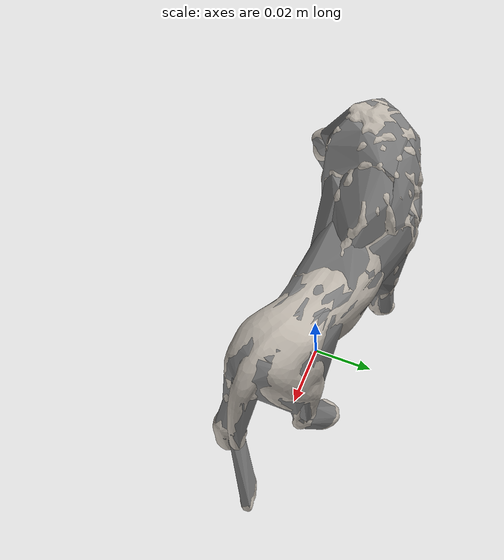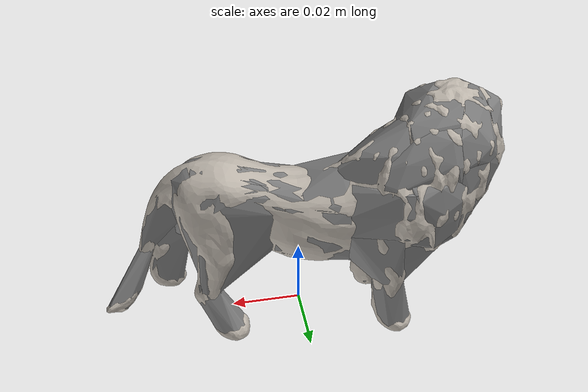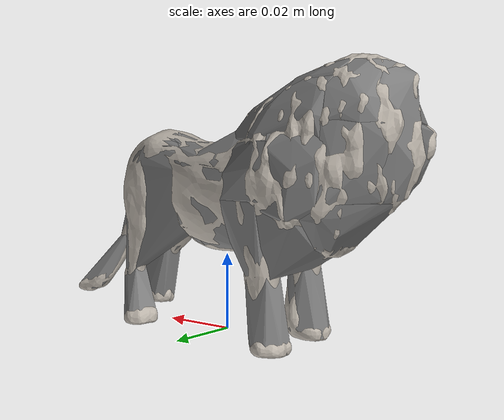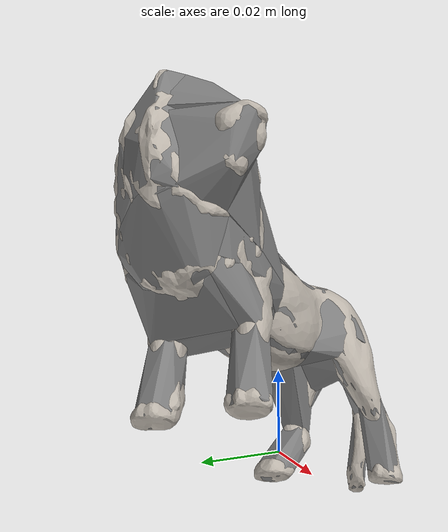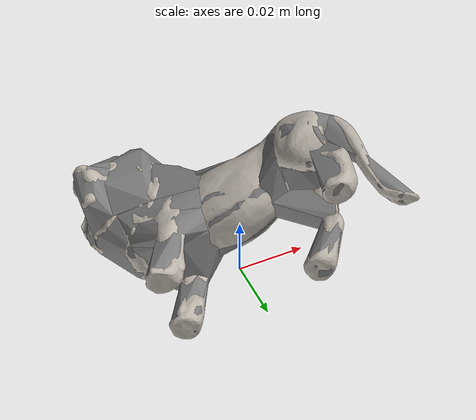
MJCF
<?xml version='1.0' encoding='utf-8'?>
<mujoco model="Schleich_Lion_Action_Figure"><asset><texture type="2d" name="texture" file="../../models/Schleich_Lion_Action_Figure/texture.png" /><material name="material_0" texture="texture" specular="0.5" shininess="0.5" /><mesh name="model" file="../../models/Schleich_Lion_Action_Figure/model.obj" /><mesh name="model_collision_0" file="../../models/Schleich_Lion_Action_Figure/model_collision_0.obj" /><mesh name="model_collision_1" file="../../models/Schleich_Lion_Action_Figure/model_collision_1.obj" /><mesh name="model_collision_2" file="../../models/Schleich_Lion_Action_Figure/model_collision_2.obj" /><mesh name="model_collision_3" file="../../models/Schleich_Lion_Action_Figure/model_collision_3.obj" /><mesh name="model_collision_4" file="../../models/Schleich_Lion_Action_Figure/model_collision_4.obj" /><mesh name="model_collision_5" file="../../models/Schleich_Lion_Action_Figure/model_collision_5.obj" /><mesh name="model_collision_6" file="../../models/Schleich_Lion_Action_Figure/model_collision_6.obj" /><mesh name="model_collision_7" file="../../models/Schleich_Lion_Action_Figure/model_collision_7.obj" /><mesh name="model_collision_8" file="../../models/Schleich_Lion_Action_Figure/model_collision_8.obj" /><mesh name="model_collision_9" file="../../models/Schleich_Lion_Action_Figure/model_collision_9.obj" /><mesh name="model_collision_10" file="../../models/Schleich_Lion_Action_Figure/model_collision_10.obj" /><mesh name="model_collision_11" file="../../models/Schleich_Lion_Action_Figure/model_collision_11.obj" /><mesh name="model_collision_12" file="../../models/Schleich_Lion_Action_Figure/model_collision_12.obj" /><mesh name="model_collision_13" file="../../models/Schleich_Lion_Action_Figure/model_collision_13.obj" /><mesh name="model_collision_14" file="../../models/Schleich_Lion_Action_Figure/model_collision_14.obj" /><mesh name="model_collision_15" file="../../models/Schleich_Lion_Action_Figure/model_collision_15.obj" /><mesh name="model_collision_16" file="../../models/Schleich_Lion_Action_Figure/model_collision_16.obj" /><mesh name="model_collision_17" file="../../models/Schleich_Lion_Action_Figure/model_collision_17.obj" /><mesh name="model_collision_18" file="../../models/Schleich_Lion_Action_Figure/model_collision_18.obj" /><mesh name="model_collision_19" file="../../models/Schleich_Lion_Action_Figure/model_collision_19.obj" /><mesh name="model_collision_20" file="../../models/Schleich_Lion_Action_Figure/model_collision_20.obj" /><mesh name="model_collision_21" file="../../models/Schleich_Lion_Action_Figure/model_collision_21.obj" /><mesh name="model_collision_22" file="../../models/Schleich_Lion_Action_Figure/model_collision_22.obj" /><mesh name="model_collision_23" file="../../models/Schleich_Lion_Action_Figure/model_collision_23.obj" /><mesh name="model_collision_24" file="../../models/Schleich_Lion_Action_Figure/model_collision_24.obj" /><mesh name="model_collision_25" file="../../models/Schleich_Lion_Action_Figure/model_collision_25.obj" /><mesh name="model_collision_26" file="../../models/Schleich_Lion_Action_Figure/model_collision_26.obj" /><mesh name="model_collision_27" file="../../models/Schleich_Lion_Action_Figure/model_collision_27.obj" /><mesh name="model_collision_28" file="../../models/Schleich_Lion_Action_Figure/model_collision_28.obj" /><mesh name="model_collision_29" file="../../models/Schleich_Lion_Action_Figure/model_collision_29.obj" /><mesh name="model_collision_30" file="../../models/Schleich_Lion_Action_Figure/model_collision_30.obj" /><mesh name="model_collision_31" file="../../models/Schleich_Lion_Action_Figure/model_collision_31.obj" /></asset><worldbody><body name="wrapper"><body name="object">
      <geom material="material_0" mesh="model" type="mesh" contype="0" conaffinity="0" group="1" />
      <geom mesh="model_collision_0" type="mesh" group="0" />
      <geom mesh="model_collision_1" type="mesh" group="0" />
      <geom mesh="model_collision_2" type="mesh" group="0" />
      <geom mesh="model_collision_3" type="mesh" group="0" />
      <geom mesh="model_collision_4" type="mesh" group="0" />
      <geom mesh="model_collision_5" type="mesh" group="0" />
      <geom mesh="model_collision_6" type="mesh" group="0" />
      <geom mesh="model_collision_7" type="mesh" group="0" />
      <geom mesh="model_collision_8" type="mesh" group="0" />
      <geom mesh="model_collision_9" type="mesh" group="0" />
      <geom mesh="model_collision_10" type="mesh" group="0" />
      <geom mesh="model_collision_11" type="mesh" group="0" />
      <geom mesh="model_collision_12" type="mesh" group="0" />
      <geom mesh="model_collision_13" type="mesh" group="0" />
      <geom mesh="model_collision_14" type="mesh" group="0" />
      <geom mesh="model_collision_15" type="mesh" group="0" />
      <geom mesh="model_collision_16" type="mesh" group="0" />
      <geom mesh="model_collision_17" type="mesh" group="0" />
      <geom mesh="model_collision_18" type="mesh" group="0" />
      <geom mesh="model_collision_19" type="mesh" group="0" />
      <geom mesh="model_collision_20" type="mesh" group="0" />
      <geom mesh="model_collision_21" type="mesh" group="0" />
      <geom mesh="model_collision_22" type="mesh" group="0" />
      <geom mesh="model_collision_23" type="mesh" group="0" />
      <geom mesh="model_collision_24" type="mesh" group="0" />
      <geom mesh="model_collision_25" type="mesh" group="0" />
      <geom mesh="model_collision_26" type="mesh" group="0" />
      <geom mesh="model_collision_27" type="mesh" group="0" />
      <geom mesh="model_collision_28" type="mesh" group="0" />
      <geom mesh="model_collision_29" type="mesh" group="0" />
      <geom mesh="model_collision_30" type="mesh" group="0" />
      <geom mesh="model_collision_31" type="mesh" group="0" />
    </body><site name="bottom_site" pos="0.0 0.0 2e-06" size="0.001" rgba="0 0 0 0" /><site name="top_site" pos="0.0 0.0 0.070444" size="0.001" rgba="0 0 0 0" /><site name="horizontal_radius_site" pos="0.057527 0.0 0.0" size="0.001" rgba="0 0 0 0" /></body></worldbody></mujoco>
